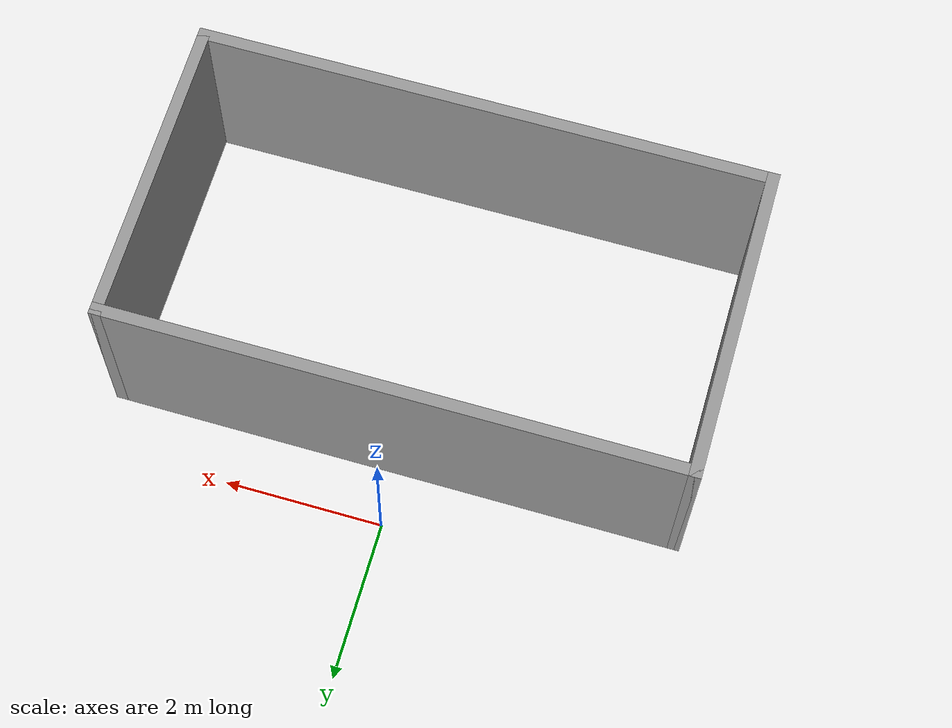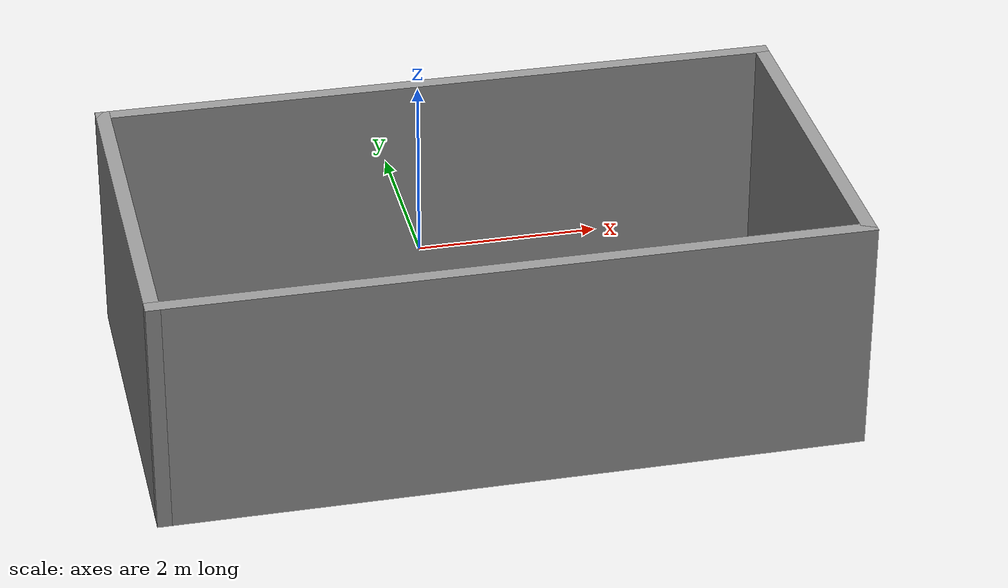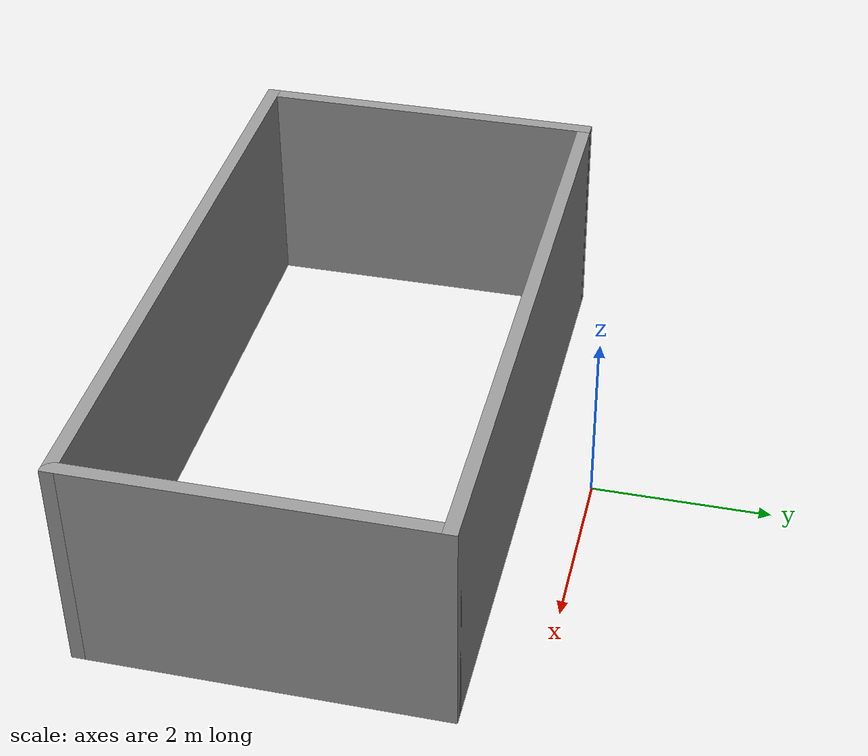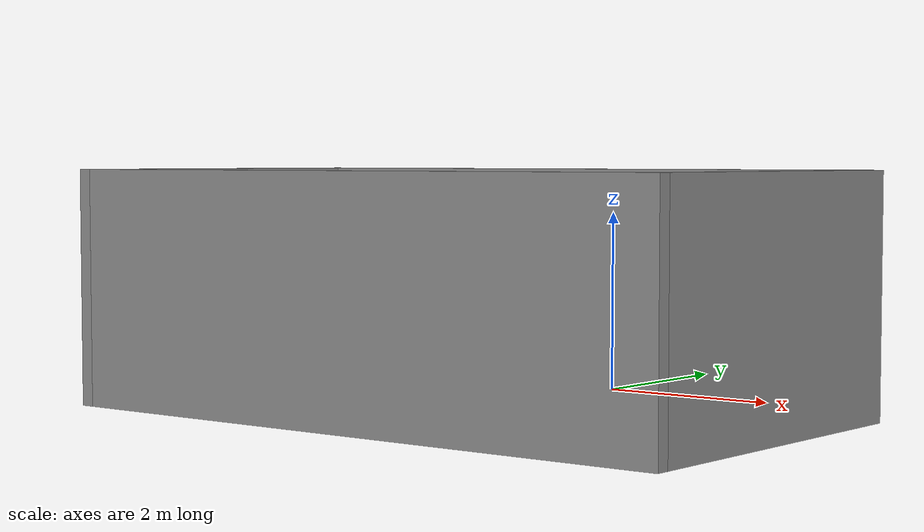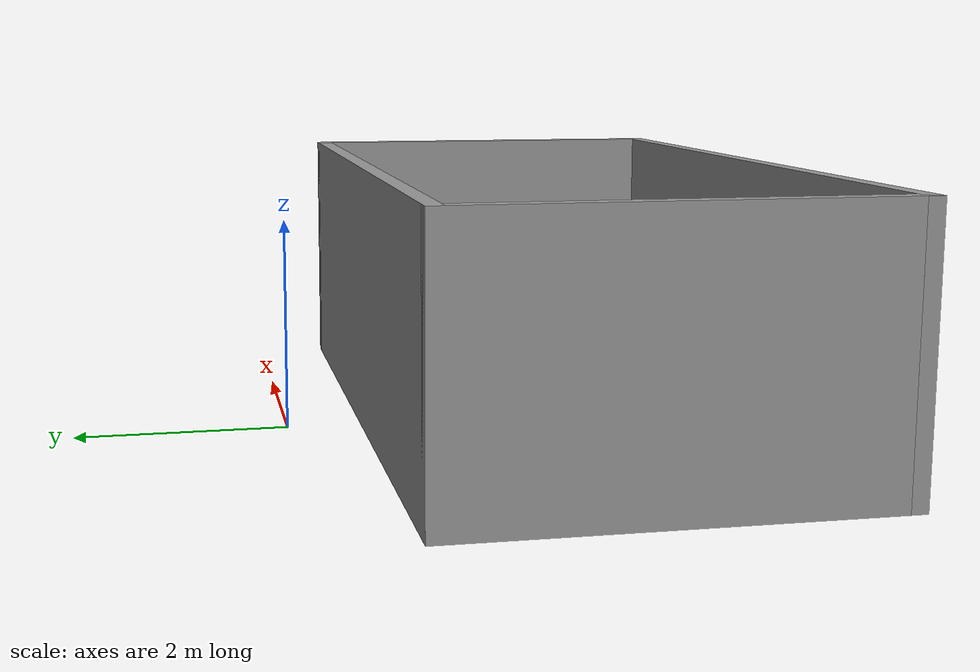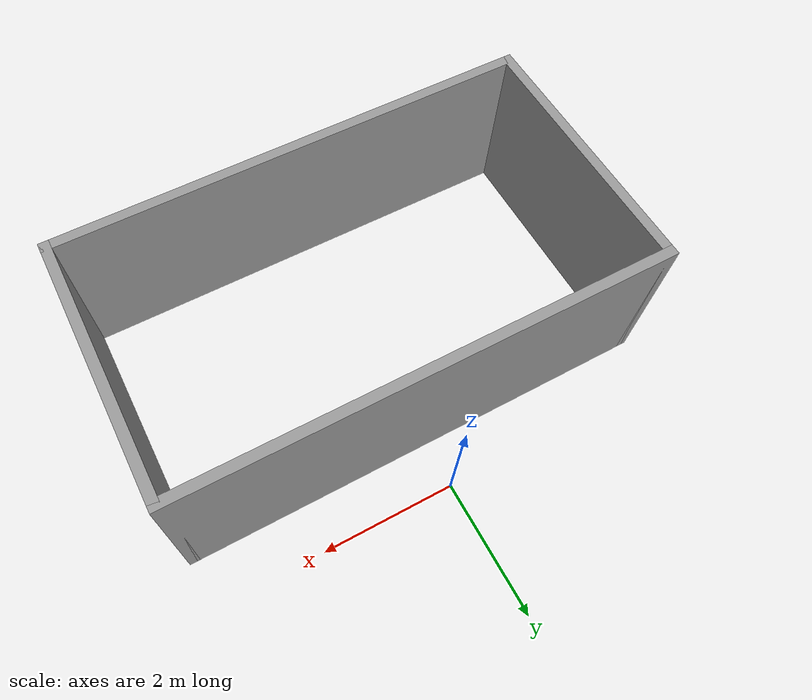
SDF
<?xml version='1.0'?>
<sdf version='1.7'>
  <model name='robotroom'>
    <pose>0.06 -2.3525 0 0 -0 0</pose>
    <link name='Wall_0'>
      <collision name='Wall_0_Collision'>
        <geometry>
          <box>
            <size>7.25 0.15 2.5</size>
          </box>
        </geometry>
        <pose>0 0 1.25 0 -0 0</pose>
      </collision>
      <visual name='Wall_0_Visual'>
        <pose>0 0 1.25 0 -0 0</pose>
        <geometry>
          <box>
            <size>7.25 0.15 2.5</size>
          </box>
        </geometry>
        <material>
          <script>
            <uri>file://media/materials/scripts/gazebo.material</uri>
            <name>Gazebo/Grey</name>
          </script>
          <ambient>1 1 1 1</ambient>
        </material>
        <meta>
          <layer>0</layer>
        </meta>
      </visual>
      <pose>0 1.5725 0 0 -0 0</pose>
    </link>
    <link name='Wall_1'>
      <collision name='Wall_1_Collision'>
        <geometry>
          <box>
            <size>4 0.15 2.5</size>
          </box>
        </geometry>
        <pose>0 0 1.25 0 -0 0</pose>
      </collision>
      <visual name='Wall_1_Visual'>
        <pose>0 0 1.25 0 -0 0</pose>
        <geometry>
          <box>
            <size>4 0.15 2.5</size>
          </box>
        </geometry>
        <material>
          <script>
            <uri>file://media/materials/scripts/gazebo.material</uri>
            <name>Gazebo/Grey</name>
          </script>
          <ambient>1 1 1 1</ambient>
        </material>
        <meta>
          <layer>0</layer>
        </meta>
      </visual>
      <pose>3.55 -0.3525 0 0 -0 -1.5708</pose>
    </link>
    <link name='Wall_2'>
      <collision name='Wall_2_Collision'>
        <geometry>
          <box>
            <size>7.25 0.15 2.5</size>
          </box>
        </geometry>
        <pose>0 0 1.25 0 -0 0</pose>
      </collision>
      <visual name='Wall_2_Visual'>
        <pose>0 0 1.25 0 -0 0</pose>
        <geometry>
          <box>
            <size>7.25 0.15 2.5</size>
          </box>
        </geometry>
        <material>
          <script>
            <uri>file://media/materials/scripts/gazebo.material</uri>
            <name>Gazebo/Grey</name>
          </script>
          <ambient>1 1 1 1</ambient>
        </material>
        <meta>
          <layer>0</layer>
        </meta>
      </visual>
      <pose>0 -2.2775 0 0 -0 3.14159</pose>
    </link>
    <link name='Wall_3'>
      <collision name='Wall_3_Collision'>
        <geometry>
          <box>
            <size>4 0.15 2.5</size>
          </box>
        </geometry>
        <pose>0 0 1.25 0 -0 0</pose>
      </collision>
      <visual name='Wall_3_Visual'>
        <pose>0 0 1.25 0 -0 0</pose>
        <geometry>
          <box>
            <size>4 0.15 2.5</size>
          </box>
        </geometry>
        <material>
          <script>
            <uri>file://media/materials/scripts/gazebo.material</uri>
            <name>Gazebo/Grey</name>
          </script>
          <ambient>1 1 1 1</ambient>
        </material>
        <meta>
          <layer>0</layer>
        </meta>
      </visual>
      <pose>-3.55 -0.3525 0 0 -0 1.5708</pose>
    </link>
    <static>1</static>
  </model>
</sdf>
